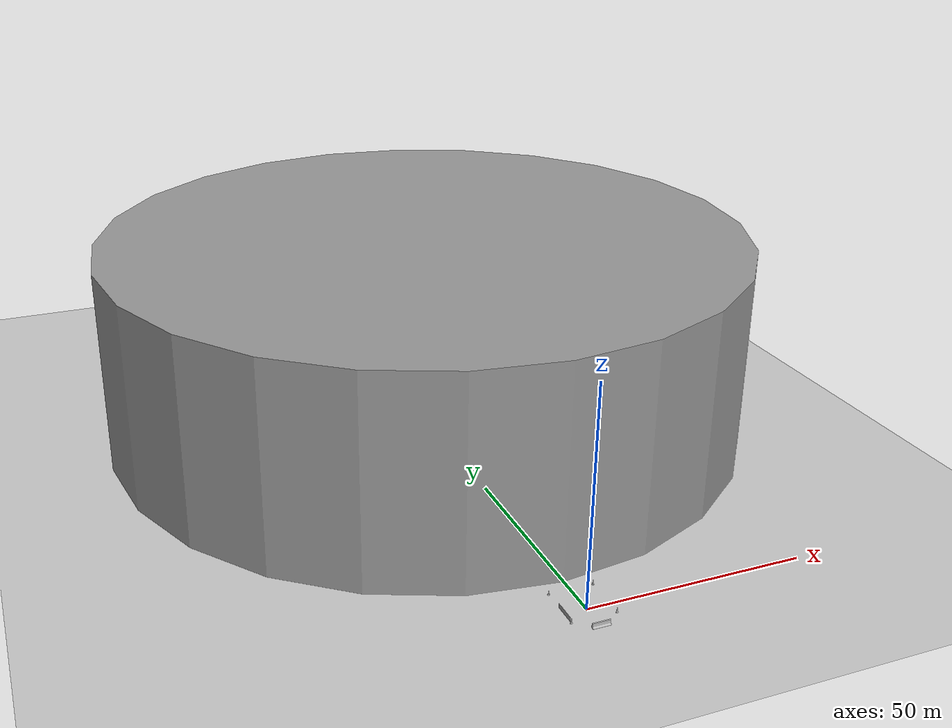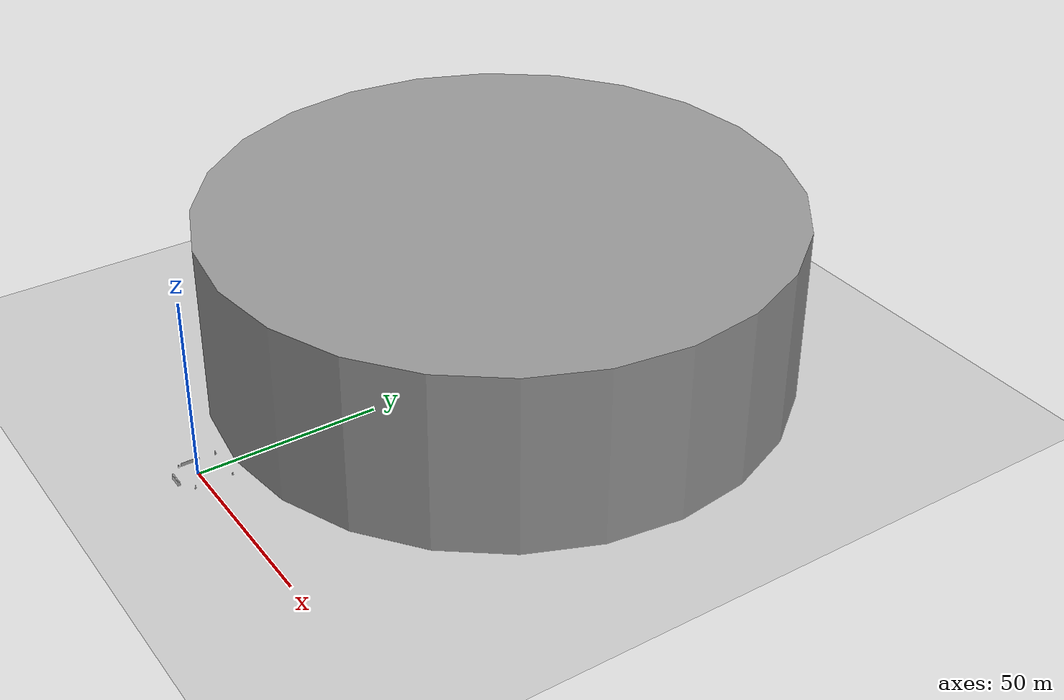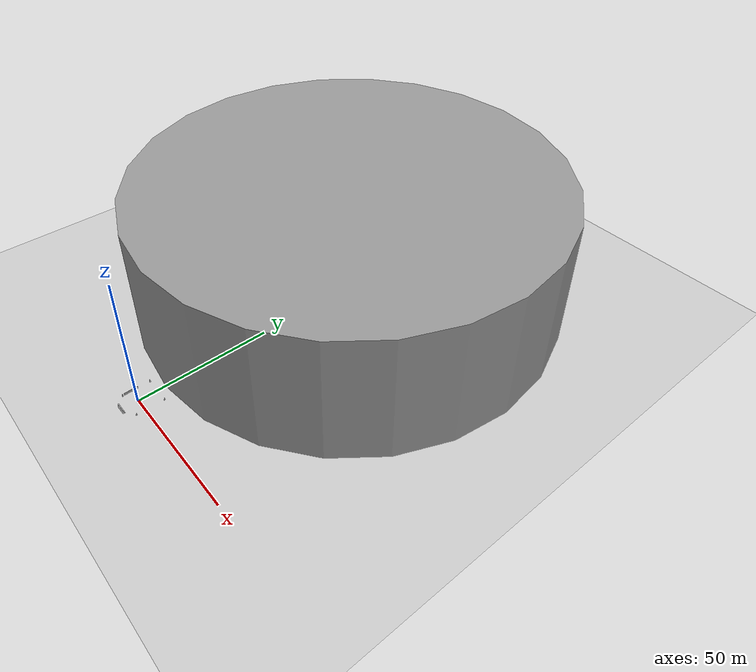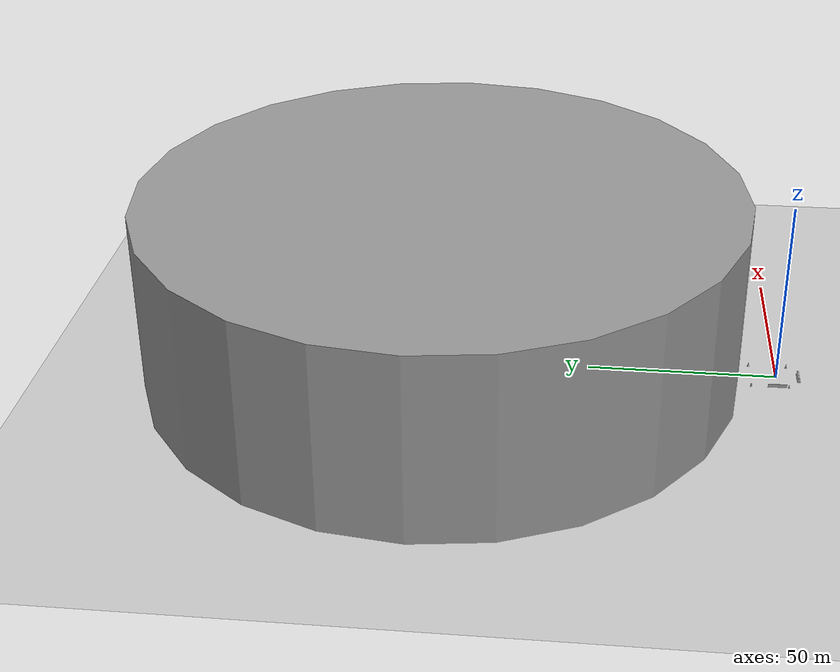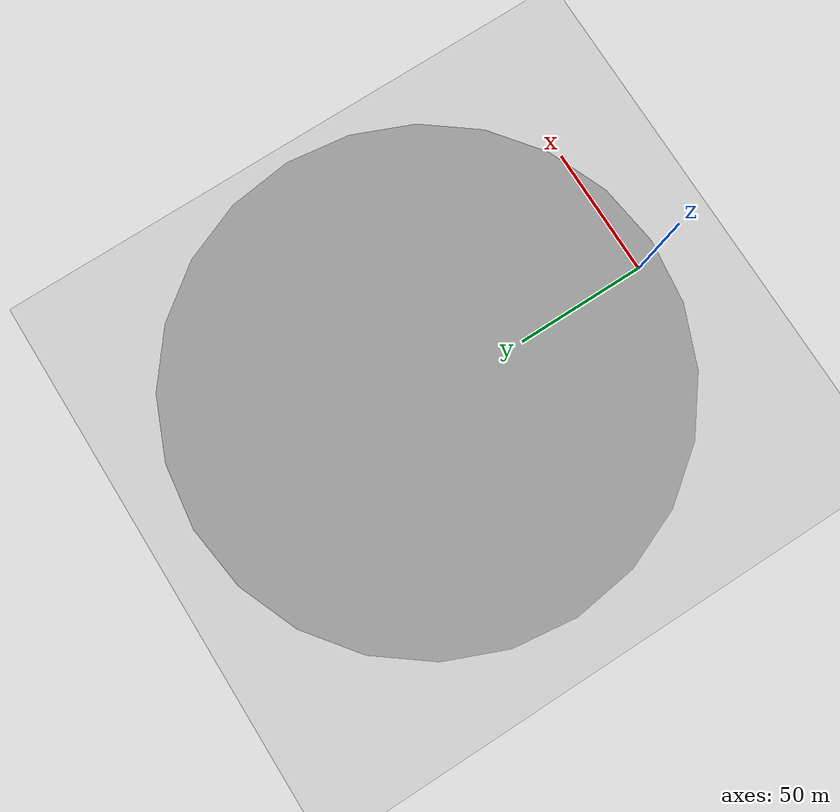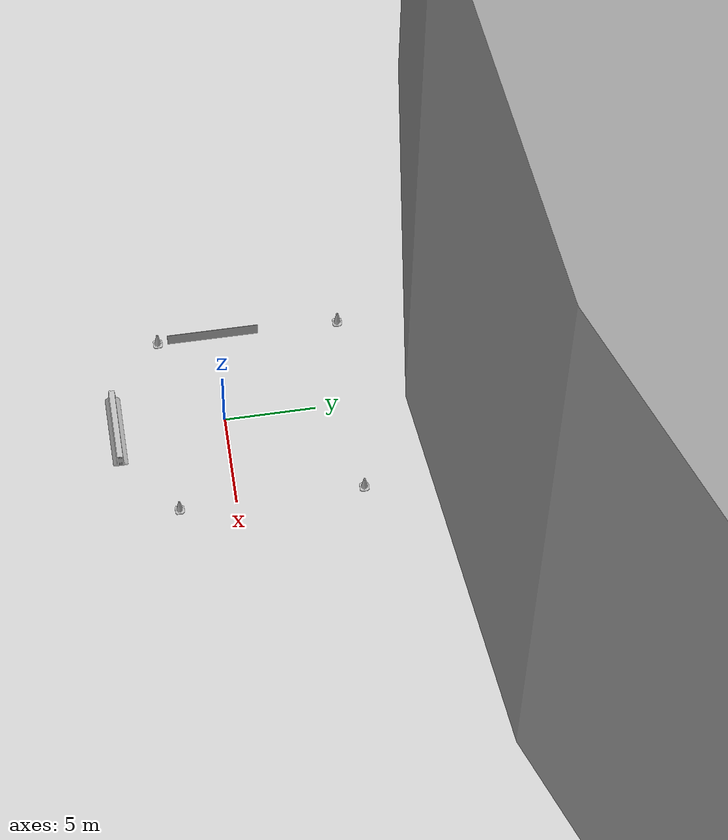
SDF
<sdf version="1.7">
 <world name="default">
  <light name="sun" type="directional">
   <pose>0 0 10 0 -0 0</pose>
   <diffuse>0.8 0.8 0.8 1</diffuse>
   <specular>0.2 0.2 0.2 1</specular>
   <attenuation>
    <range>1000</range>
    <constant>0.9</constant>
    <linear>0.01</linear>
    <quadratic>0.001</quadratic>
   </attenuation>
   <direction>-0.5 0.1 -0.9</direction>
   <spot><inner_angle>0</inner_angle><outer_angle>0</outer_angle><falloff>0</falloff></spot>
  </light>
  <model name="ground_plane">
   <static>1</static>
   <link name="link">
    <collision name="collision">
     <geometry><plane><normal>0 0 1</normal><size>100 200</size></plane></geometry>
     <surface>
      <contact><collide_bitmask>65535</collide_bitmask></contact>
      <friction><ode><mu>100</mu><mu2>50</mu2></ode></friction>
     </surface>
    </collision>
    <visual name="visual">
     <cast_shadows>0</cast_shadows>
     <geometry><plane><normal>0 0 1</normal><size>100 100</size></plane></geometry>
     <material>
      <script><uri>file://media/materials/scripts/gazebo.material</uri><name>Gazebo/Grey</name></script>
     </material>
    </visual>
   </link>
  </model>
  <gravity>0 0 -9.8</gravity>
  <magnetic_field>6e-06 2.3e-05 -4.2e-05</magnetic_field>
  <atmosphere type="adiabatic"/>
  <physics type="ode">
   <max_step_size>0.001</max_step_size>
   <real_time_factor>1</real_time_factor>
   <real_time_update_rate>1000</real_time_update_rate>
  </physics>
  <scene><ambient>0.4 0.4 0.4 1</ambient><background>0.7 0.7 0.7 1</background><shadows>1</shadows></scene>
  <audio><device>default</device></audio>
  <spherical_coordinates>
   <surface_model>EARTH_WGS84</surface_model>
   <latitude_deg>0</latitude_deg>
   <longitude_deg>0</longitude_deg>
   <elevation>0</elevation>
   <heading_deg>0</heading_deg>
  </spherical_coordinates>
  <model name="tank_structure">
   <link name="link_0">
    <inertial>
     <mass>7.84142e+09</mass>
     <inertia>
      <ixx>1.41799e+13</ixx>
      <ixy>0</ixy>
      <ixz>0</ixz>
      <iyy>1.41799e+13</iyy>
      <iyz>0</iyz>
      <izz>2.50925e+13</izz>
     </inertia>
    </inertial>
    <visual name="visual">
     <geometry><cylinder><radius>80</radius><length>50</length></cylinder></geometry>
     <material>
      <lighting>1</lighting>
      <script><uri>file://media/materials/scripts/gazebo.material</uri><name>Gazebo/Grey</name></script>
      <shader type="pixel"><normal_map>__default__</normal_map></shader>
      <ambient>0.3 0.3 0.3 1</ambient>
      <diffuse>0.7 0.7 0.7 1</diffuse>
      <specular>0.01 0.01 0.01 1</specular>
      <emissive>0 0 0 1</emissive>
     </material>
    </visual>
    <collision name="collision">
     <geometry><cylinder><radius>80</radius><length>50</length></cylinder></geometry>
     <surface>
      <friction>
       <ode><mu>1</mu><mu2>1</mu2><fdir1>0 0 0</fdir1><slip1>0</slip1><slip2>0</slip2></ode>
       <torsional>
        <coefficient>1</coefficient>
        <patch_radius>0</patch_radius>
        <surface_radius>0</surface_radius>
        <use_patch_radius>1</use_patch_radius>
        <ode><slip>0</slip></ode>
       </torsional>
      </friction>
      <bounce><restitution_coefficient>0</restitution_coefficient><threshold>1e+06</threshold></bounce>
      <contact>
       <collide_without_contact>0</collide_without_contact>
       <collide_without_contact_bitmask>1</collide_without_contact_bitmask>
       <collide_bitmask>1</collide_bitmask>
       <ode>
        <soft_cfm>0</soft_cfm>
        <soft_erp>0.2</soft_erp>
        <kp>1e+13</kp>
        <kd>1</kd>
        <max_vel>0.01</max_vel>
        <min_depth>0</min_depth>
       </ode>
       <bullet>
        <split_impulse>1</split_impulse>
        <split_impulse_penetration_threshold>-0.01</split_impulse_penetration_threshold>
        <soft_cfm>0</soft_cfm>
        <soft_erp>0.2</soft_erp>
        <kp>1e+13</kp>
        <kd>1</kd>
       </bullet>
      </contact>
     </surface>
    </collision>
   </link>
   <static>1</static>
   <pose>0 90 25 0 -0 0</pose>
  </model>
  <model name="Construction Cone">
   <link name="link">
    <collision name="collision">
     <geometry>
      <mesh><scale>10 10 10</scale><uri>model://construction_cone/meshes/construction_cone.dae</uri></mesh>
     </geometry>
    </collision>
    <visual name="visual">
     <geometry>
      <mesh><scale>10 10 10</scale><uri>model://construction_cone/meshes/construction_cone.dae</uri></mesh>
     </geometry>
    </visual>
    <inertial>
     <inertia><ixx>1</ixx><ixy>0</ixy><ixz>0</ixz><iyy>1</iyy><iyz>0</iyz><izz>1</izz></inertia>
     <mass>1</mass>
    </inertial>
   </link>
   <pose>5.06955 6.96601 -0 0 -1e-06 0</pose>
  </model>
  <model name="Construction Cone_0">
   <link name="link">
    <collision name="collision">
     <geometry>
      <mesh><scale>10 10 10</scale><uri>model://construction_cone/meshes/construction_cone.dae</uri></mesh>
     </geometry>
    </collision>
    <visual name="visual">
     <geometry>
      <mesh><scale>10 10 10</scale><uri>model://construction_cone/meshes/construction_cone.dae</uri></mesh>
     </geometry>
    </visual>
    <inertial>
     <inertia><ixx>1</ixx><ixy>0</ixy><ixz>0</ixz><iyy>1</iyy><iyz>0</iyz><izz>1</izz></inertia>
     <mass>1</mass>
    </inertial>
   </link>
   <pose>-5.0204 6.92782 -0 0 -1e-06 0</pose>
  </model>
  <model name="Construction Cone_1">
   <link name="link">
    <collision name="collision">
     <geometry>
      <mesh><scale>10 10 10</scale><uri>model://construction_cone/meshes/construction_cone.dae</uri></mesh>
     </geometry>
    </collision>
    <visual name="visual">
     <geometry>
      <mesh><scale>10 10 10</scale><uri>model://construction_cone/meshes/construction_cone.dae</uri></mesh>
     </geometry>
    </visual>
    <inertial>
     <inertia><ixx>1</ixx><ixy>0</ixy><ixz>0</ixz><iyy>1</iyy><iyz>0</iyz><izz>1</izz></inertia>
     <mass>1</mass>
    </inertial>
   </link>
   <pose>5.03672 -3.09433 -0 0 -1e-06 0</pose>
  </model>
  <model name="Construction Cone_2">
   <link name="link">
    <collision name="collision">
     <geometry>
      <mesh><scale>10 10 10</scale><uri>model://construction_cone/meshes/construction_cone.dae</uri></mesh>
     </geometry>
    </collision>
    <visual name="visual">
     <geometry>
      <mesh><scale>10 10 10</scale><uri>model://construction_cone/meshes/construction_cone.dae</uri></mesh>
     </geometry>
    </visual>
    <inertial>
     <inertia><ixx>1</ixx><ixy>0</ixy><ixz>0</ixz><iyy>1</iyy><iyz>0</iyz><izz>1</izz></inertia>
     <mass>1</mass>
    </inertial>
   </link>
   <pose>-5.05252 -3.04354 -0 0 -1e-06 0</pose>
  </model>
  <model name="jersey_barrier">
   <static>1</static>
   <link name="link">
    <visual name="visual">
     <geometry><mesh><uri>model://jersey_barrier/meshes/jersey_barrier.dae</uri></mesh></geometry>
    </visual>
    <collision name="upright">
     <pose>0 0 0.5715 0 -0 0</pose>
     <geometry><box><size>4.06542 0.3063 1.143</size></box></geometry>
    </collision>
    <collision name="base">
     <pose>0 0 0.032258 0 -0 0</pose>
     <geometry><box><size>4.06542 0.8107 0.064516</size></box></geometry>
    </collision>
    <collision name="base2">
     <pose>0 0 0.1 0 -0 0</pose>
     <geometry><box><size>4.06542 0.65 0.1</size></box></geometry>
    </collision>
    <collision name="base3">
     <pose>0 0 0.2 0 -0 0</pose>
     <geometry><box><size>4.06542 0.5 0.1</size></box></geometry>
    </collision>
    <collision name="left-angle">
     <pose>0 -0.224 0.2401 0.9 -0 0</pose>
     <geometry><box><size>4.06542 0.5 0.064516</size></box></geometry>
    </collision>
    <collision name="right-angle">
     <pose>0 0.224 0.2401 -0.9 0 0</pose>
     <geometry><box><size>4.06542 0.5 0.064516</size></box></geometry>
    </collision>
   </link>
   <pose>-0.024233 -5.92601 0 0 -0 0</pose>
  </model>
  <model name="steel_wall">
   <link name="link_0">
    <inertial>
     <mass>760</mass>
     <inertia><ixx>1646.67</ixx><ixy>0</ixy><ixz>0</ixz><iyy>63.3587</iyy><iyz>0</iyz><izz>1583.36</izz></inertia>
    </inertial>
    <visual name="visual">
     <geometry><box><size>0.02 5 1</size></box></geometry>
     <material>
      <lighting>1</lighting>
      <script><uri>file://media/materials/scripts/gazebo.material</uri><name>Gazebo/Grey</name></script>
      <shader type="pixel"><normal_map>__default__</normal_map></shader>
      <ambient>0.3 0.3 0.3 1</ambient>
      <diffuse>0.7 0.7 0.7 1</diffuse>
      <specular>0.01 0.01 0.01 1</specular>
      <emissive>0 0 0 1</emissive>
     </material>
    </visual>
    <collision name="collision">
     <geometry><box><size>0.02 5 1</size></box></geometry>
     <surface>
      <friction>
       <ode><mu>1</mu><mu2>1</mu2><fdir1>0 0 0</fdir1><slip1>0</slip1><slip2>0</slip2></ode>
       <torsional>
        <coefficient>1</coefficient>
        <patch_radius>0</patch_radius>
        <surface_radius>0</surface_radius>
        <use_patch_radius>1</use_patch_radius>
        <ode><slip>0</slip></ode>
       </torsional>
      </friction>
      <bounce><restitution_coefficient>0</restitution_coefficient><threshold>1e+06</threshold></bounce>
      <contact>
       <collide_without_contact>0</collide_without_contact>
       <collide_without_contact_bitmask>1</collide_without_contact_bitmask>
       <collide_bitmask>1</collide_bitmask>
       <ode>
        <soft_cfm>0</soft_cfm>
        <soft_erp>0.2</soft_erp>
        <kp>1e+13</kp>
        <kd>1</kd>
        <max_vel>0.01</max_vel>
        <min_depth>0</min_depth>
       </ode>
       <bullet>
        <split_impulse>1</split_impulse>
        <split_impulse_penetration_threshold>-0.01</split_impulse_penetration_threshold>
        <soft_cfm>0</soft_cfm>
        <soft_erp>0.2</soft_erp>
        <kp>1e+13</kp>
        <kd>1</kd>
       </bullet>
      </contact>
     </surface>
    </collision>
   </link>
   <static>1</static>
   <pose>-5 0 0.5 0 -0 0</pose>
  </model>
 </world>
</sdf>
